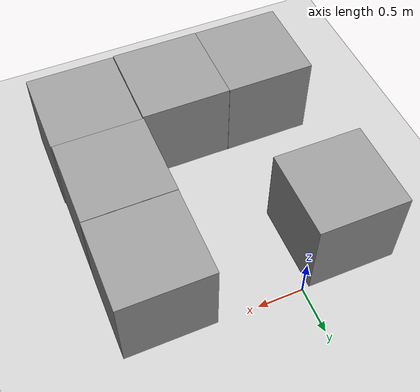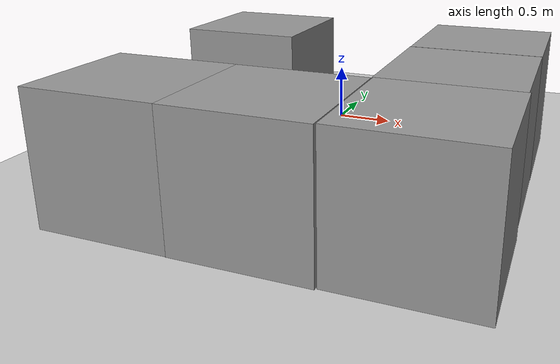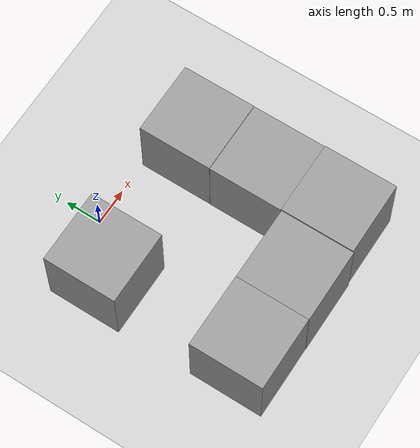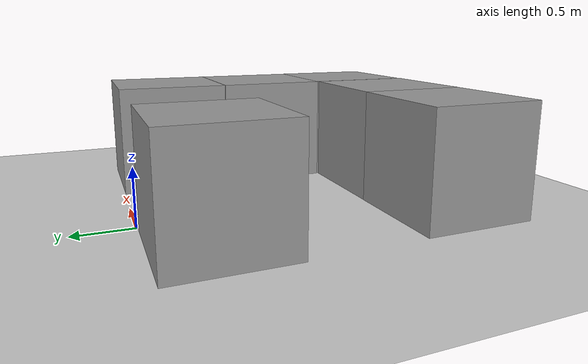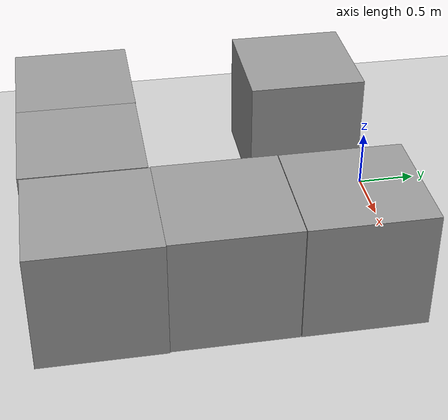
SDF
<sdf version="1.4">
 <world name="default">
  <light name="sun" type="directional">
   <pose>0 0 10 0 -0 0</pose>
   <diffuse>0.8 0.8 0.8 1</diffuse>
   <specular>0.2 0.2 0.2 1</specular>
   <attenuation>
    <range>1000</range>
    <constant>0.9</constant>
    <linear>0.01</linear>
    <quadratic>0.001</quadratic>
   </attenuation>
   <direction>-0.5 0.1 -0.9</direction>
  </light>
  <model name="ground_plane">
   <static>1</static>
   <link name="link">
    <collision name="collision">
     <geometry><plane><normal>0 0 1</normal><size>100 100</size></plane></geometry>
     <surface>
      <contact><collide_bitmask>65535</collide_bitmask></contact>
      <friction><ode><mu>100</mu><mu2>50</mu2></ode></friction>
     </surface>
    </collision>
    <visual name="visual">
     <cast_shadows>0</cast_shadows>
     <geometry><plane><normal>0 0 1</normal><size>100 100</size></plane></geometry>
     <material>
      <script><uri>file://media/materials/scripts/gazebo.material</uri><name>Gazebo/Grey</name></script>
     </material>
    </visual>
   </link>
  </model>
  <gravity>0 0 -9.8</gravity>
  <magnetic_field>6e-06 2.3e-05 -4.2e-05</magnetic_field>
  <atmosphere type="adiabatic"/>
  <physics name="default_physics" default="0" type="ode">
   <max_step_size>0.001</max_step_size>
   <real_time_factor>1</real_time_factor>
   <real_time_update_rate>1000</real_time_update_rate>
  </physics>
  <scene><ambient>0.4 0.4 0.4 1</ambient><background>0.7 0.7 0.7 1</background><shadows>1</shadows></scene>
  <audio><device>default</device></audio>
  <spherical_coordinates>
   <surface_model>EARTH_WGS84</surface_model>
   <latitude_deg>0</latitude_deg>
   <longitude_deg>0</longitude_deg>
   <elevation>0</elevation>
   <heading_deg>0</heading_deg>
  </spherical_coordinates>
  <model name="unit_box">
   <pose>-0.582227 -0.510327 0.499995 -1e-05 -0 -0</pose>
   <link name="link">
    <inertial>
     <mass>1</mass>
     <inertia>
      <ixx>0.166667</ixx>
      <ixy>0</ixy>
      <ixz>0</ixz>
      <iyy>0.166667</iyy>
      <iyz>0</iyz>
      <izz>0.166667</izz>
     </inertia>
    </inertial>
    <collision name="collision"><geometry><box><size>1 1 1</size></box></geometry></collision>
    <visual name="visual">
     <geometry><box><size>1 1 1</size></box></geometry>
     <material>
      <script><name>Gazebo/Grey</name><uri>file://media/materials/scripts/gazebo.material</uri></script>
     </material>
    </visual>
   </link>
  </model>
  <model name="unit_box_0">
   <pose>-0.553252 -2.52237 0.5 -0 1e-06 -2e-06</pose>
   <link name="link">
    <inertial>
     <mass>1</mass>
     <inertia>
      <ixx>0.166667</ixx>
      <ixy>0</ixy>
      <ixz>0</ixz>
      <iyy>0.166667</iyy>
      <iyz>0</iyz>
      <izz>0.166667</izz>
     </inertia>
    </inertial>
    <collision name="collision"><geometry><box><size>1 1 1</size></box></geometry></collision>
    <visual name="visual">
     <geometry><box><size>1 1 1</size></box></geometry>
     <material>
      <script><name>Gazebo/Grey</name><uri>file://media/materials/scripts/gazebo.material</uri></script>
     </material>
    </visual>
   </link>
  </model>
  <model name="unit_box_1">
   <pose>0.446748 -2.52518 0.5 0 -1e-06 -2e-06</pose>
   <link name="link">
    <inertial>
     <mass>1</mass>
     <inertia>
      <ixx>0.166667</ixx>
      <ixy>0</ixy>
      <ixz>0</ixz>
      <iyy>0.166667</iyy>
      <iyz>0</iyz>
      <izz>0.166667</izz>
     </inertia>
    </inertial>
    <collision name="collision"><geometry><box><size>1 1 1</size></box></geometry></collision>
    <visual name="visual">
     <geometry><box><size>1 1 1</size></box></geometry>
     <material>
      <script><name>Gazebo/Grey</name><uri>file://media/materials/scripts/gazebo.material</uri></script>
     </material>
    </visual>
   </link>
  </model>
  <model name="unit_box_2">
   <pose>1.44526 -1.51077 0.499995 -1e-05 -0 6.2e-05</pose>
   <link name="link">
    <inertial>
     <mass>1</mass>
     <inertia>
      <ixx>0.166667</ixx>
      <ixy>0</ixy>
      <ixz>0</ixz>
      <iyy>0.166667</iyy>
      <iyz>0</iyz>
      <izz>0.166667</izz>
     </inertia>
    </inertial>
    <collision name="collision"><geometry><box><size>1 1 1</size></box></geometry></collision>
    <visual name="visual">
     <geometry><box><size>1 1 1</size></box></geometry>
     <material>
      <script><name>Gazebo/Grey</name><uri>file://media/materials/scripts/gazebo.material</uri></script>
     </material>
    </visual>
   </link>
  </model>
  <model name="unit_box_3">
   <pose>1.4475 -0.506591 0.499995 -1e-05 -0 0</pose>
   <link name="link">
    <inertial>
     <mass>1</mass>
     <inertia>
      <ixx>0.166667</ixx>
      <ixy>0</ixy>
      <ixz>0</ixz>
      <iyy>0.166667</iyy>
      <iyz>0</iyz>
      <izz>0.166667</izz>
     </inertia>
    </inertial>
    <collision name="collision"><geometry><box><size>1 1 1</size></box></geometry></collision>
    <visual name="visual">
     <geometry><box><size>1 1 1</size></box></geometry>
     <material>
      <script><name>Gazebo/Grey</name><uri>file://media/materials/scripts/gazebo.material</uri></script>
     </material>
    </visual>
   </link>
  </model>
  <model name="unit_box_4">
   <pose>1.45563 -2.51078 0.499995 -1e-05 -0 6.4e-05</pose>
   <link name="link">
    <inertial>
     <mass>1</mass>
     <inertia>
      <ixx>0.166667</ixx>
      <ixy>0</ixy>
      <ixz>0</ixz>
      <iyy>0.166667</iyy>
      <iyz>0</iyz>
      <izz>0.166667</izz>
     </inertia>
    </inertial>
    <collision name="collision"><geometry><box><size>1 1 1</size></box></geometry></collision>
    <visual name="visual">
     <geometry><box><size>1 1 1</size></box></geometry>
     <material>
      <script><name>Gazebo/Grey</name><uri>file://media/materials/scripts/gazebo.material</uri></script>
     </material>
    </visual>
   </link>
  </model>
 </world>
</sdf>
